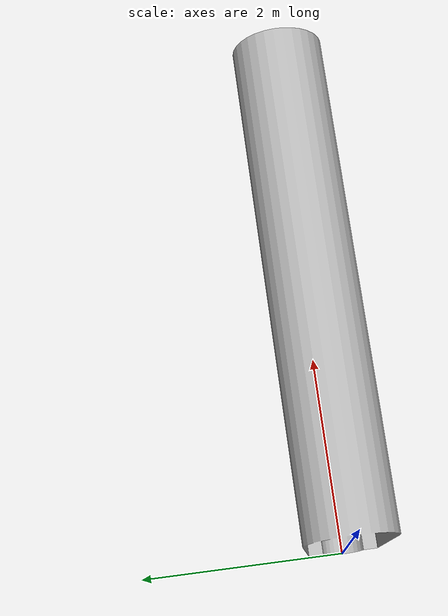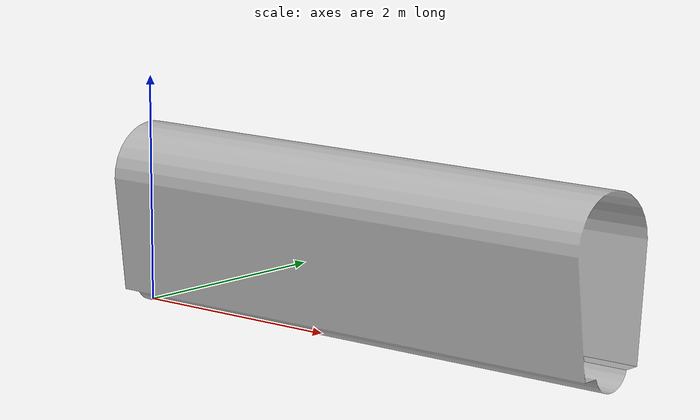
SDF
<?xml version="1.0" ?>
<sdf version="1.5">
  <model name="T114A_straight_5m">
    <static>true</static>

   <link name="link">
      <collision name="collision">
        <geometry>
          <mesh>
            <uri>model://T114A_straight_5m/meshes/T114A_straight_5m.dae</uri>
          </mesh>
        </geometry>
      </collision>
      <visual name="visual">
        <geometry>
          <mesh>
            <uri>model://T114A_straight_5m/meshes/T114A_straight_5m.dae</uri>
          </mesh>
        </geometry>
      </visual>
    </link>
  </model>
</sdf>
